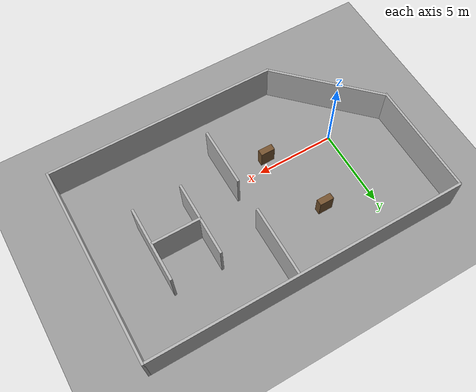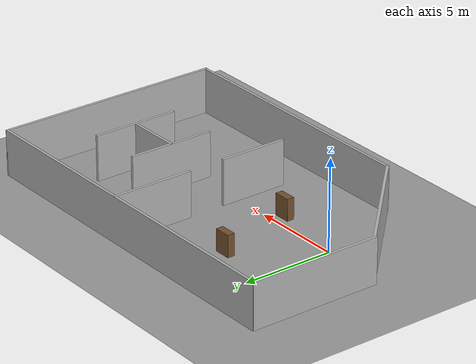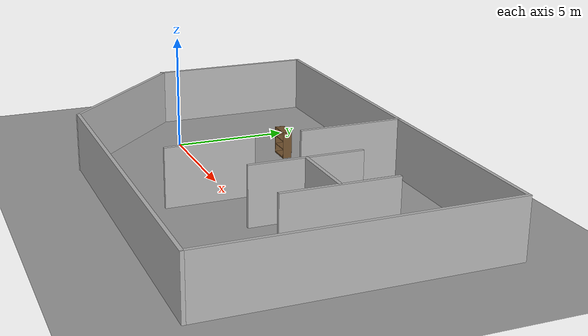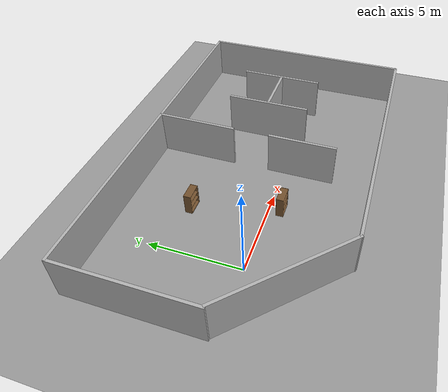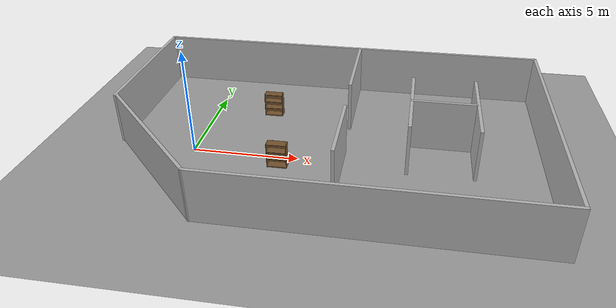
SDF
<sdf version="1.8">
 <world name="dymap">
  <gravity>0 0 -9.8</gravity>
  <physics default="0" name="default_physics" type="ode">
   <max_step_size>0.01</max_step_size>
   <real_time_factor>1</real_time_factor>
   <real_time_update_rate>100</real_time_update_rate>
  </physics>
  <plugin filename="gz-sim-physics-system" name="gz::sim::systems::Physics"/>
  <plugin filename="gz-sim-user-commands-system" name="gz::sim::systems::UserCommands"/>
  <plugin filename="gz-sim-scene-broadcaster-system" name="gz::sim::systems::SceneBroadcaster"/>
  <plugin filename="libsocial_nav_ground_truth.so" name="social_nav::GroundTruthPosePublisher1">
   <topic>/social_nav/ground_truth</topic>
   <update_rate>20</update_rate>
   <model>my_amr</model>
   <model>actor_collision_proxy</model>
   <model>Nurse</model>
   <model>Nurse_clone</model>
  </plugin>
  <light name="sun" type="directional">
   <pose>0 0 10 0 0 0</pose>
   <diffuse>0.8 0.8 0.8 1</diffuse>
   <specular>0.2 0.2 0.2 1</specular>
   <attenuation>
    <range>1000</range>
    <constant>0.9</constant>
    <linear>0.01</linear>
    <quadratic>0.001</quadratic>
   </attenuation>
   <direction>-0.5 0.1 -0.9</direction>
  </light>
  <model name="ground_plane">
   <static>true</static>
   <link name="link">
    <collision name="collision">
     <geometry><plane><normal>0 0 1</normal><size>100 100</size></plane></geometry>
    </collision>
    <visual name="visual">
     <geometry><plane><normal>0 0 1</normal><size>100 100</size></plane></geometry>
     <material><ambient>0.4 0.4 0.4 1</ambient><diffuse>0.6 0.6 0.6 1</diffuse></material>
    </visual>
   </link>
  </model>
  <model name="my_map">
   <static>true</static>
   <link name="Wall_1">
    <pose>6.2711 7.4346 0 0 0 0</pose>
    <collision name="Wall_1_collision">
     <geometry><box><size>20 0.15 2.5</size></box></geometry>
     <pose>0 0 1.25 0 0 0</pose>
    </collision>
    <visual name="Wall_1_visual">
     <geometry><box><size>20 0.15 2.5</size></box></geometry>
     <pose>0 0 1.25 0 0 0</pose>
     <material><ambient>0.7 0.7 0.7 1</ambient></material>
    </visual>
   </link>
   <link name="Wall_9">
    <pose>7.00023 5.23577 0 0 0 -1.5708</pose>
    <collision name="Wall_9_collision">
     <geometry><box><size>4.5 0.15 2.5</size></box></geometry>
     <pose>0 0 1.25 0 0 0</pose>
    </collision>
    <visual name="Wall_9_visual">
     <geometry><box><size>4.5 0.15 2.5</size></box></geometry>
     <pose>0 0 1.25 0 0 0</pose>
     <material><ambient>0.7 0.7 0.7 1</ambient></material>
    </visual>
   </link>
   <link name="Wall_11">
    <pose>7.04069 -0.902582 0 0 0 -1.5708</pose>
    <collision name="Wall_11_collision">
     <geometry><box><size>3.75 0.15 2.5</size></box></geometry>
     <pose>0 0 1.25 0 0 0</pose>
    </collision>
    <visual name="Wall_11_visual">
     <geometry><box><size>3.75 0.15 2.5</size></box></geometry>
     <pose>0 0 1.25 0 0 0</pose>
     <material><ambient>0.7 0.7 0.7 1</ambient></material>
    </visual>
   </link>
   <link name="Wall_13">
    <pose>9.99395 1.91478 0 0 0 -1.5708</pose>
    <collision name="Wall_13_collision">
     <geometry><box><size>4.75 0.15 2.5</size></box></geometry>
     <pose>0 0 1.25 0 0 0</pose>
    </collision>
    <visual name="Wall_13_visual">
     <geometry><box><size>4.75 0.15 2.5</size></box></geometry>
     <pose>0 0 1.25 0 0 0</pose>
     <material><ambient>0.7 0.7 0.7 1</ambient></material>
    </visual>
   </link>
   <link name="Wall_15">
    <pose>11.4594 1.90881 0 0 0 0</pose>
    <collision name="Wall_15_collision">
     <geometry><box><size>3 0.15 2.5</size></box></geometry>
     <pose>0 0 1.25 0 0 0</pose>
    </collision>
    <visual name="Wall_15_visual">
     <geometry><box><size>3 0.15 2.5</size></box></geometry>
     <pose>0 0 1.25 0 0 0</pose>
     <material><ambient>0.7 0.7 0.7 1</ambient></material>
    </visual>
   </link>
   <link name="Wall_17">
    <pose>12.9877 1.91478 0 0 0 -1.5708</pose>
    <collision name="Wall_17_collision">
     <geometry><box><size>4.75 0.15 2.5</size></box></geometry>
     <pose>0 0 1.25 0 0 0</pose>
    </collision>
    <visual name="Wall_17_visual">
     <geometry><box><size>4.75 0.15 2.5</size></box></geometry>
     <pose>0 0 1.25 0 0 0</pose>
     <material><ambient>0.7 0.7 0.7 1</ambient></material>
    </visual>
   </link>
   <link name="Wall_2">
    <pose>16.1961 1.2596 0 0 0 -1.5708</pose>
    <collision name="Wall_2_collision">
     <geometry><box><size>12.5 0.15 2.5</size></box></geometry>
     <pose>0 0 1.25 0 0 0</pose>
    </collision>
    <visual name="Wall_2_visual">
     <geometry><box><size>12.5 0.15 2.5</size></box></geometry>
     <pose>0 0 1.25 0 0 0</pose>
     <material><ambient>0.7 0.7 0.7 1</ambient></material>
    </visual>
   </link>
   <link name="Wall_3">
    <pose>8.89611 -4.9154 0 0 0 3.14159</pose>
    <collision name="Wall_3_collision">
     <geometry><box><size>14.75 0.15 2.5</size></box></geometry>
     <pose>0 0 1.25 0 0 0</pose>
    </collision>
    <visual name="Wall_3_visual">
     <geometry><box><size>14.75 0.15 2.5</size></box></geometry>
     <pose>0 0 1.25 0 0 0</pose>
     <material><ambient>0.7 0.7 0.7 1</ambient></material>
    </visual>
   </link>
   <link name="Wall_4">
    <pose>-1.00252 -2.31678 0 0 0 2.35619</pose>
    <collision name="Wall_4_collision">
     <geometry><box><size>7.5 0.15 2.5</size></box></geometry>
     <pose>0 0 1.25 0 0 0</pose>
    </collision>
    <visual name="Wall_4_visual">
     <geometry><box><size>7.5 0.15 2.5</size></box></geometry>
     <pose>0 0 1.25 0 0 0</pose>
     <material><ambient>0.7 0.7 0.7 1</ambient></material>
    </visual>
   </link>
   <link name="Wall_7">
    <pose>-3.68411 3.85513 0 0 0 1.5708</pose>
    <collision name="Wall_7_collision">
     <geometry><box><size>7.25 0.15 2.5</size></box></geometry>
     <pose>0 0 1.25 0 0 0</pose>
    </collision>
    <visual name="Wall_7_visual">
     <geometry><box><size>7.25 0.15 2.5</size></box></geometry>
     <pose>0 0 1.25 0 0 0</pose>
     <material><ambient>0.7 0.7 0.7 1</ambient></material>
    </visual>
   </link>
  </model>
  <model name="bookshelf">
   <static>true</static>
   <pose>2.95166 4.12219 0 0 0 0</pose>
   <link name="link">
    <collision name="back">
     <pose>0 0.005 0.6 0 0 0</pose>
     <geometry><box><size>0.9 0.01 1.2</size></box></geometry>
    </collision>
    <visual name="back_visual">
     <pose>0 0.005 0.6 0 0 0</pose>
     <geometry><box><size>0.9 0.01 1.2</size></box></geometry>
     <material><ambient>0.45 0.32 0.18 1</ambient></material>
    </visual>
    <collision name="left_side">
     <pose>0.45 -0.195 0.6 0 0 0</pose>
     <geometry><box><size>0.02 0.4 1.2</size></box></geometry>
    </collision>
    <visual name="left_side_visual">
     <pose>0.45 -0.195 0.6 0 0 0</pose>
     <geometry><box><size>0.02 0.4 1.2</size></box></geometry>
     <material><ambient>0.45 0.32 0.18 1</ambient></material>
    </visual>
    <collision name="right_side">
     <pose>-0.45 -0.195 0.6 0 0 0</pose>
     <geometry><box><size>0.02 0.4 1.2</size></box></geometry>
    </collision>
    <visual name="right_side_visual">
     <pose>-0.45 -0.195 0.6 0 0 0</pose>
     <geometry><box><size>0.02 0.4 1.2</size></box></geometry>
     <material><ambient>0.45 0.32 0.18 1</ambient></material>
    </visual>
    <collision name="bottom">
     <pose>0 -0.195 0.03 0 0 0</pose>
     <geometry><box><size>0.88 0.4 0.06</size></box></geometry>
    </collision>
    <visual name="bottom_visual">
     <pose>0 -0.195 0.03 0 0 0</pose>
     <geometry><box><size>0.88 0.4 0.06</size></box></geometry>
     <material><ambient>0.45 0.32 0.18 1</ambient></material>
    </visual>
    <collision name="top">
     <pose>0 -0.195 1.19 0 0 0</pose>
     <geometry><box><size>0.88 0.4 0.02</size></box></geometry>
    </collision>
    <visual name="top_visual">
     <pose>0 -0.195 1.19 0 0 0</pose>
     <geometry><box><size>0.88 0.4 0.02</size></box></geometry>
     <material><ambient>0.45 0.32 0.18 1</ambient></material>
    </visual>
    <collision name="low_shelf">
     <pose>0 -0.195 0.43 0 0 0</pose>
     <geometry><box><size>0.88 0.4 0.02</size></box></geometry>
    </collision>
    <visual name="low_shelf_visual">
     <pose>0 -0.195 0.43 0 0 0</pose>
     <geometry><box><size>0.88 0.4 0.02</size></box></geometry>
     <material><ambient>0.45 0.32 0.18 1</ambient></material>
    </visual>
    <collision name="high_shelf">
     <pose>0 -0.195 0.8 0 0 0</pose>
     <geometry><box><size>0.88 0.4 0.02</size></box></geometry>
    </collision>
    <visual name="high_shelf_visual">
     <pose>0 -0.195 0.8 0 0 0</pose>
     <geometry><box><size>0.88 0.4 0.02</size></box></geometry>
     <material><ambient>0.45 0.32 0.18 1</ambient></material>
    </visual>
   </link>
  </model>
  <model name="bookshelf_0">
   <static>true</static>
   <pose>4.18585 -0.455827 0 0 0 0</pose>
   <link name="link">
    <collision name="back">
     <pose>0 0.005 0.6 0 0 0</pose>
     <geometry><box><size>0.9 0.01 1.2</size></box></geometry>
    </collision>
    <visual name="back_visual">
     <pose>0 0.005 0.6 0 0 0</pose>
     <geometry><box><size>0.9 0.01 1.2</size></box></geometry>
     <material><ambient>0.45 0.32 0.18 1</ambient></material>
    </visual>
    <collision name="left_side">
     <pose>0.45 -0.195 0.6 0 0 0</pose>
     <geometry><box><size>0.02 0.4 1.2</size></box></geometry>
    </collision>
    <visual name="left_side_visual">
     <pose>0.45 -0.195 0.6 0 0 0</pose>
     <geometry><box><size>0.02 0.4 1.2</size></box></geometry>
     <material><ambient>0.45 0.32 0.18 1</ambient></material>
    </visual>
    <collision name="right_side">
     <pose>-0.45 -0.195 0.6 0 0 0</pose>
     <geometry><box><size>0.02 0.4 1.2</size></box></geometry>
    </collision>
    <visual name="right_side_visual">
     <pose>-0.45 -0.195 0.6 0 0 0</pose>
     <geometry><box><size>0.02 0.4 1.2</size></box></geometry>
     <material><ambient>0.45 0.32 0.18 1</ambient></material>
    </visual>
    <collision name="bottom">
     <pose>0 -0.195 0.03 0 0 0</pose>
     <geometry><box><size>0.88 0.4 0.06</size></box></geometry>
    </collision>
    <visual name="bottom_visual">
     <pose>0 -0.195 0.03 0 0 0</pose>
     <geometry><box><size>0.88 0.4 0.06</size></box></geometry>
     <material><ambient>0.45 0.32 0.18 1</ambient></material>
    </visual>
    <collision name="top">
     <pose>0 -0.195 1.19 0 0 0</pose>
     <geometry><box><size>0.88 0.4 0.02</size></box></geometry>
    </collision>
    <visual name="top_visual">
     <pose>0 -0.195 1.19 0 0 0</pose>
     <geometry><box><size>0.88 0.4 0.02</size></box></geometry>
     <material><ambient>0.45 0.32 0.18 1</ambient></material>
    </visual>
    <collision name="low_shelf">
     <pose>0 -0.195 0.43 0 0 0</pose>
     <geometry><box><size>0.88 0.4 0.02</size></box></geometry>
    </collision>
    <visual name="low_shelf_visual">
     <pose>0 -0.195 0.43 0 0 0</pose>
     <geometry><box><size>0.88 0.4 0.02</size></box></geometry>
     <material><ambient>0.45 0.32 0.18 1</ambient></material>
    </visual>
    <collision name="high_shelf">
     <pose>0 -0.195 0.8 0 0 0</pose>
     <geometry><box><size>0.88 0.4 0.02</size></box></geometry>
    </collision>
    <visual name="high_shelf_visual">
     <pose>0 -0.195 0.8 0 0 0</pose>
     <geometry><box><size>0.88 0.4 0.02</size></box></geometry>
     <material><ambient>0.45 0.32 0.18 1</ambient></material>
    </visual>
   </link>
  </model>
  <model name="actor_collision_proxy">
   <static>true</static>
   <pose>8.0 3.0 0.0 0 0 -1.570796</pose>
   <link name="body">
    <pose>0.0 0.0 0.85 0 0 0</pose>
    <collision name="human_collision">
     <geometry><cylinder><radius>0.28</radius><length>1.70</length></cylinder></geometry>
    </collision>
   </link>
   <plugin filename="libsocial_nav_gazebo.so" name="social_nav::MovingCollisionProxyPlugin1">
    <actor_name>actor</actor_name>
   </plugin>
  </model>
 </world>
</sdf>
